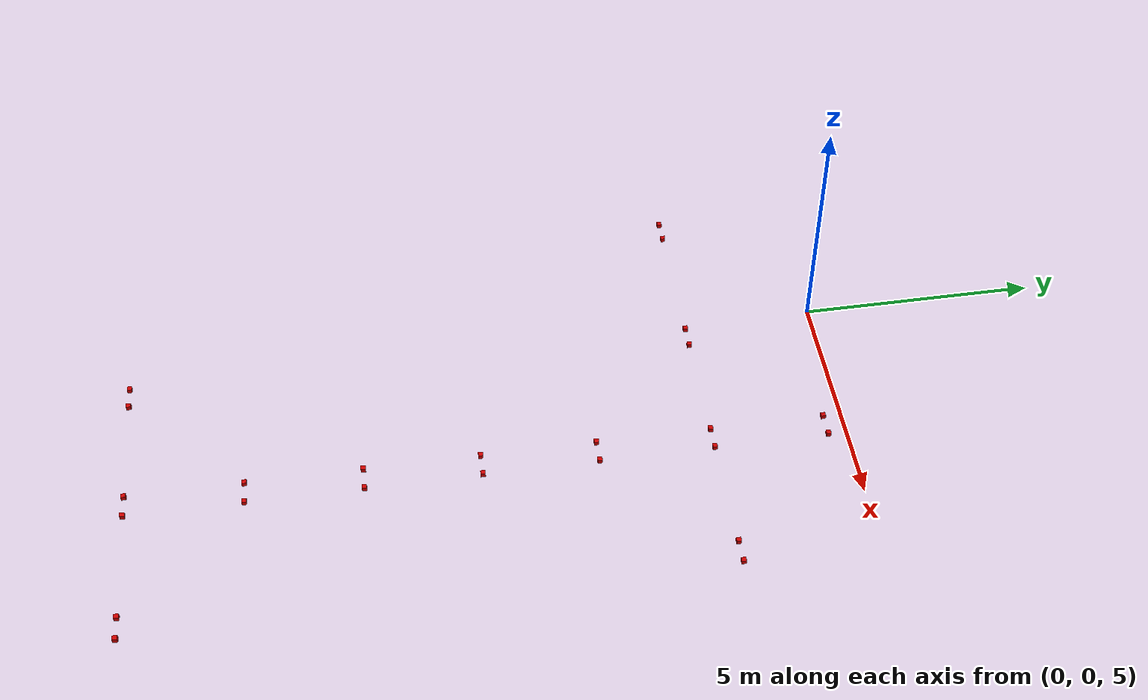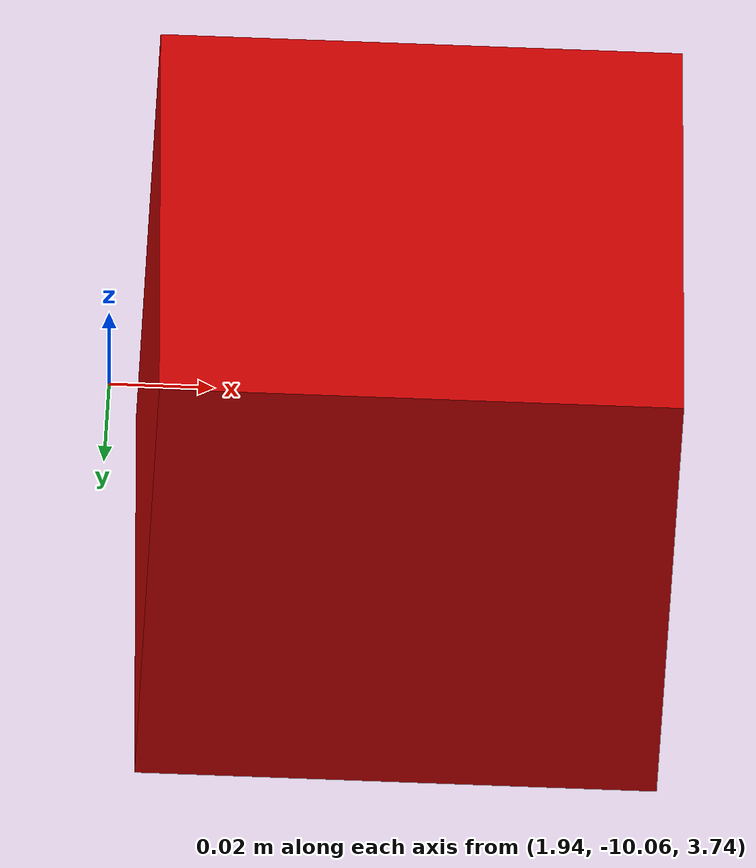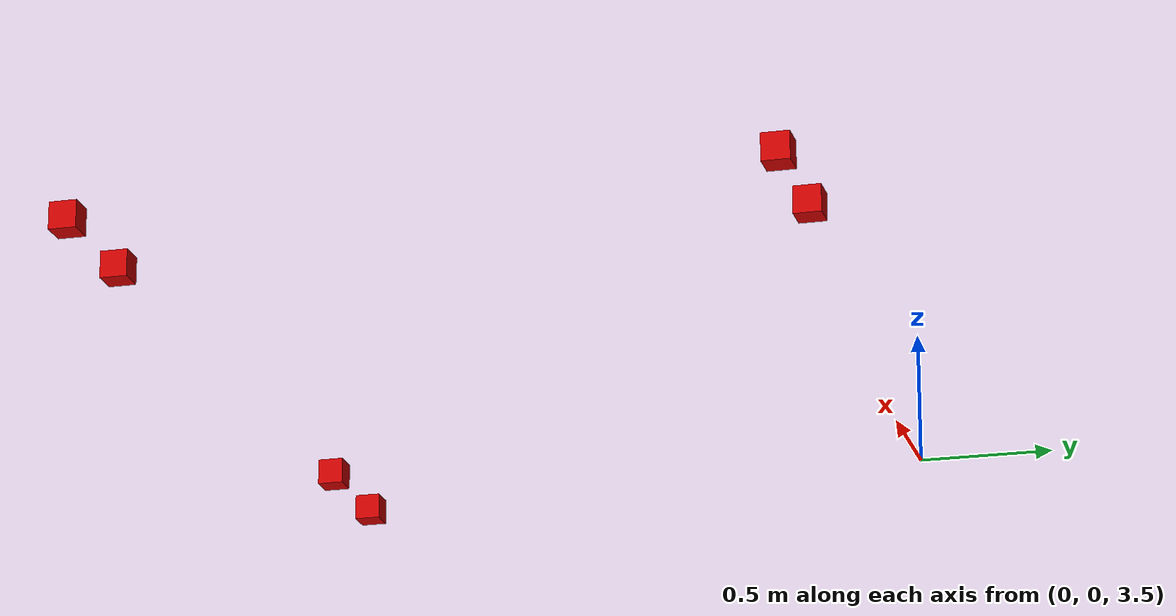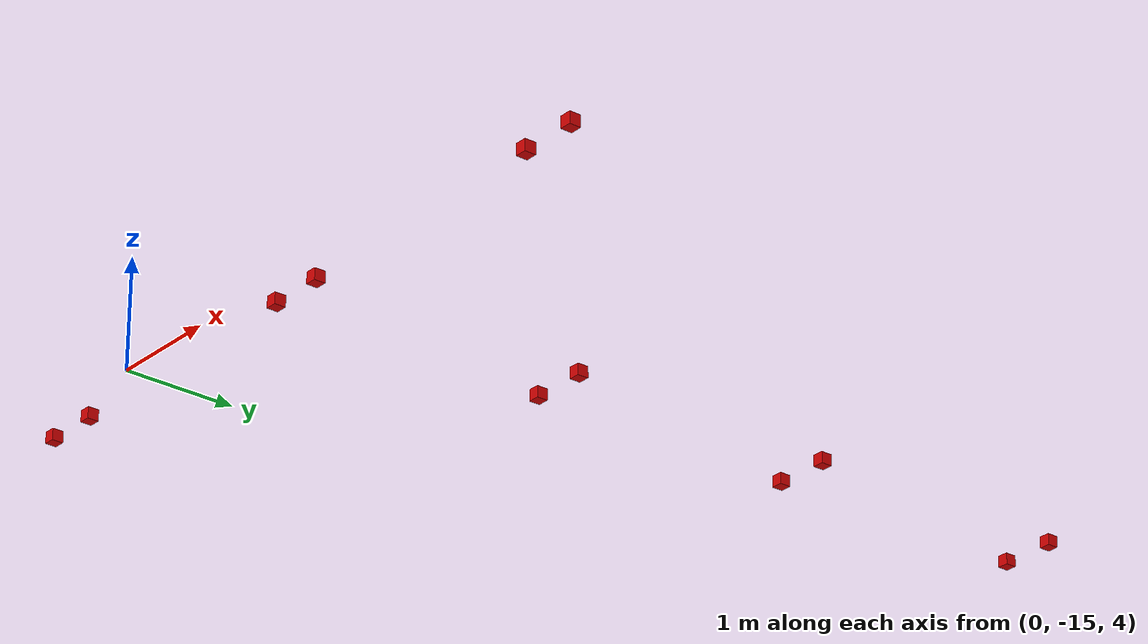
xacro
<?xml version="1.0" ?>
<robot name="warehouse" xmlns:xacro="http://www.ros.org/wiki/xacro" >
<xacro:include filename = "$(find cam_pack)/urdf/warehouse.plugins.xacro"/>

<xacro:property name="height_off_ground" value="4" />
<xacro:property name="height_off_ground_offset" value="0.2" />
<xacro:property name="cam_separation" value="10" />
<xacro:property name="cam_box_size" value="0.1" />
<xacro:property name="cam_mass" value="0.25" />
<xacro:property name="cam_z_joint_height" value="${height_off_ground - height_off_ground_offset}" />

<xacro:property name="cam_inertia_xx" value="0.00020416666666666668" />
<xacro:property name="cam_inertia_yy" value="0.00020416666666666668" />
<xacro:property name="cam_inertia_zz" value="0.00020416666666666668" />

<xacro:property name="ceiling_mass" value="50" />
<xacro:property name="ceiling_inertia_xx" value="150.16666666666669" />
<xacro:property name="ceiling_inertia_yy" value="337.66666666666674" />
<xacro:property name="ceiling_inertia_zz" value="487.50000000000006" />
<xacro:property name="ceiling_width" value="0.001" />
<xacro:property name="ceiling_length" value="0.001" />
<xacro:property name="ceiling_thickness" value="0.001" />

    <!-- Specify material colors here -->
    <material name="blue">
        <color rgba="0 0 0.8 0.8"/>
    </material>
    <material name="red">
        <color rgba="0.8 0 0 1"/>
    </material>
    <material name="grey">
        <color rgba="0.75 0.75 0.75 1"/>
    </material>

    <!-- Gazebo plugin initialization -->
    <gazebo>
        <plugin name="gazebo_ros_control" filename="libgazebo_ros_control.so">
            <robotNamespace>/warehouse</robotNamespace> This robot name is the same as robot name at the top
        </plugin>
    </gazebo>

     <!-- ////////////////////////// === BASE LINK ==== //////////////////////////////////// -->

   <!-- Main base link -->
    <link name="base_link">
        <visual>
        <origin xyz="0 0 ${height_off_ground}" rpy="0 0 0"/>  created at 31 meters above just to have space to work with
        <geometry>
            <box size="${ceiling_width} ${ceiling_length} ${ceiling_thickness}"/>
        </geometry>
        <material name = "blue"/>
        </visual>

        <collision>
            <origin xyz="0 0 ${height_off_ground}" rpy="0 0 0"/>
            <geometry>
                <box size="${ceiling_width} ${ceiling_length} ${ceiling_thickness}"/>
            </geometry>
        </collision>
        <inertial>
        <mass value="${ceiling_mass}" /> This camera was estimated from the mass(weight) of a logitech camera = 0.25kg
        <origin xyz="0 0 ${height_off_ground}" rpy="0 0 0"/> Inertia was calculated from the inertial calculator program
        <inertia ixx="${ceiling_inertia_xx}" ixy="0" ixz="0" iyy="${ceiling_inertia_yy}" iyz="0" izz="${ceiling_inertia_zz}" />
        </inertial>
    </link>

    This is for color and physical properties in Gazebo, color won't work with the material tag in gazebo
    only for URDF coloring
    <gazebo reference="base_link">
        <turnGravityOff>true</turnGravityOff>
        <mu1>10.0</mu1>
        <mu2>10.0</mu2>
        <material>Gazebo/DarkGrey</material>
        <static>true</static>
    </gazebo>

    <!-- ////////////////////////// === CAMERA LINKS ==== //////////////////////////////////// -->
 Change camera size to make more visible 0.5 0.5 0.5...original = 0.07 0.07 0.07
    <!-- Camera Link 1-->
    <link name="camera_link_1">
        <collision>
        <origin xyz="0 0 0" rpy="0 0 0"/>
        <geometry>
            <box size="${cam_box_size} ${cam_box_size} ${cam_box_size}"/>
        </geometry>
        </collision>

        <visual>
        <origin xyz="0 0 0" rpy="0 0 0"/>
        <geometry>
            <box size="${cam_box_size} ${cam_box_size} ${cam_box_size}"/>
        </geometry>
        <material name="red"/>
        </visual>

        <inertial>
        <mass value="${cam_mass}" /> This camera was estimated from the mass(weight) of a logitech camera = 0.25kg
        <origin xyz="0 0 0" rpy="0 0 0"/> Inertia was calculated from the inertial calculator program
        <inertia ixx="${cam_inertia_xx}" ixy="0" ixz="0" iyy="${cam_inertia_yy}" iyz="0" izz="${cam_inertia_zz}" />
        </inertial>
    </link>

    <gazebo reference="camera_link_1">
        <turnGravityOff>true</turnGravityOff>
        <mu1>10.0</mu1>
        <mu2>10.0</mu2>
        <material>Gazebo/Blue</material>
        <static>true</static>
    </gazebo>

    <!-- Camera Link 2-->
    <link name="camera_link_2">
        <collision>
        <origin xyz="0 0 0" rpy="0 0 0"/>
        <geometry>
            <box size="${cam_box_size} ${cam_box_size} ${cam_box_size}"/>
        </geometry>
        </collision>

        <visual>
        <origin xyz="0 0 0" rpy="0 0 0"/>
        <geometry>
            <box size="${cam_box_size} ${cam_box_size} ${cam_box_size}"/>
        </geometry>
        <material name="red"/>
        </visual>

        <inertial>
        <mass value="${cam_mass}" /> This camera was estimated from the mass(weight) of a logitech camera = 0.25kg
        <origin xyz="0 0 0" rpy="0 0 0"/> Inertia was calculated from the inertial calculator program
        <inertia ixx="${cam_inertia_xx}" ixy="0" ixz="0" iyy="${cam_inertia_yy}" iyz="0" izz="${cam_inertia_zz}" />
        </inertial>
    </link>

    <gazebo reference="camera_link_2">
        <turnGravityOff>true</turnGravityOff>
        <mu1>10.0</mu1>
        <mu2>10.0</mu2>
        <material>Gazebo/Red</material>
        <static>true</static>
    </gazebo>

    <!-- Camera Link 3-->
    <link name="camera_link_3">
        <collision>
        <origin xyz="0 0 0" rpy="0 0 0"/>
        <geometry>
            <box size="${cam_box_size} ${cam_box_size} ${cam_box_size}"/>
        </geometry>
        </collision>

        <visual>
        <origin xyz="0 0 0" rpy="0 0 0"/>
        <geometry>
            <box size="${cam_box_size} ${cam_box_size} ${cam_box_size}"/>
        </geometry>
        <material name="red"/>
        </visual>

        <inertial>
        <mass value="${cam_mass}" /> This camera was estimated from the mass(weight) of a logitech camera = 0.25kg
        <origin xyz="0 0 0" rpy="0 0 0"/> Inertia was calculated from the inertial calculator program
        <inertia ixx="${cam_inertia_xx}" ixy="0" ixz="0" iyy="${cam_inertia_yy}" iyz="0" izz="${cam_inertia_zz}" />
        </inertial>
    </link>

    <gazebo reference="camera_link_3">
        <turnGravityOff>true</turnGravityOff>
        <mu1>10.0</mu1>
        <mu2>10.0</mu2>
        <material>Gazebo/Red</material>
        <static>true</static>
    </gazebo>

    <!-- Camera Link 4-->
    <link name="camera_link_4">
        <collision>
        <origin xyz="0 0 0" rpy="0 0 0"/>
        <geometry>
            <box size="${cam_box_size} ${cam_box_size} ${cam_box_size}"/>
        </geometry>
        </collision>

        <visual>
        <origin xyz="0 0 0" rpy="0 0 0"/>
        <geometry>
            <box size="${cam_box_size} ${cam_box_size} ${cam_box_size}"/>
        </geometry>
        <material name="red"/>
        </visual>

        <inertial>
        <mass value="${cam_mass}" /> This camera was estimated from the mass(weight) of a logitech camera = 0.25kg
        <origin xyz="0 0 0" rpy="0 0 0"/> Inertia was calculated from the inertial calculator program
        <inertia ixx="${cam_inertia_xx}" ixy="0" ixz="0" iyy="${cam_inertia_yy}" iyz="0" izz="${cam_inertia_zz}" />
        </inertial>
    </link>

    <gazebo reference="camera_link_4">
        <turnGravityOff>true</turnGravityOff>
        <mu1>10.0</mu1>
        <mu2>10.0</mu2>
        <material>Gazebo/Red</material>
        <static>true</static>
    </gazebo>

    <!-- Camera Link 5-->
    <link name="camera_link_5">
        <collision>
        <origin xyz="0 0 0" rpy="0 0 0"/>
        <geometry>
            <box size="${cam_box_size} ${cam_box_size} ${cam_box_size}"/>
        </geometry>
        </collision>

        <visual>
        <origin xyz="0 0 0" rpy="0 0 0"/>
        <geometry>
            <box size="${cam_box_size} ${cam_box_size} ${cam_box_size}"/>
        </geometry>
        <material name="red"/>
        </visual>

        <inertial>
        <mass value="${cam_mass}" /> This camera was estimated from the mass(weight) of a logitech camera = 0.25kg
        <origin xyz="0 0 0" rpy="0 0 0"/> Inertia was calculated from the inertial calculator program
        <inertia ixx="${cam_inertia_xx}" ixy="0" ixz="0" iyy="${cam_inertia_yy}" iyz="0" izz="${cam_inertia_zz}" />
        </inertial>
    </link>

    <gazebo reference="camera_link_5">
        <turnGravityOff>true</turnGravityOff>
        <mu1>10.0</mu1>
        <mu2>10.0</mu2>
        <material>Gazebo/Red</material>
        <static>true</static>
    </gazebo>

 <!-- Camera Link 6-->
    <link name="camera_link_6">
        <collision>
        <origin xyz="0 0 0" rpy="0 0 0"/>
        <geometry>
            <box size="${cam_box_size} ${cam_box_size} ${cam_box_size}"/>
        </geometry>
        </collision>

        <visual>
        <origin xyz="0 0 0" rpy="0 0 0"/>
        <geometry>
            <box size="${cam_box_size} ${cam_box_size} ${cam_box_size}"/>
        </geometry>
        <material name="red"/>
        </visual>

        <inertial>
        <mass value="${cam_mass}" /> This camera was estimated from the mass(weight) of a logitech camera = 0.25kg
        <origin xyz="0 0 0" rpy="0 0 0"/> Inertia was calculated from the inertial calculator program
        <inertia ixx="${cam_inertia_xx}" ixy="0" ixz="0" iyy="${cam_inertia_yy}" iyz="0" izz="${cam_inertia_zz}" />
        </inertial>
    </link>

    <gazebo reference="camera_link_6">
        <turnGravityOff>true</turnGravityOff>
        <mu1>10.0</mu1>
        <mu2>10.0</mu2>
        <material>Gazebo/Red</material>
        <static>true</static>
    </gazebo>

<!-- Camera Link 7-->
    <link name="camera_link_7">
        <collision>
        <origin xyz="0 0 0" rpy="0 0 0"/>
        <geometry>
            <box size="${cam_box_size} ${cam_box_size} ${cam_box_size}"/>
        </geometry>
        </collision>

        <visual>
        <origin xyz="0 0 0" rpy="0 0 0"/>
        <geometry>
            <box size="${cam_box_size} ${cam_box_size} ${cam_box_size}"/>
        </geometry>
        <material name="red"/>
        </visual>

        <inertial>
        <mass value="${cam_mass}" /> This camera was estimated from the mass(weight) of a logitech camera = 0.25kg
        <origin xyz="0 0 0" rpy="0 0 0"/> Inertia was calculated from the inertial calculator program
        <inertia ixx="${cam_inertia_xx}" ixy="0" ixz="0" iyy="${cam_inertia_yy}" iyz="0" izz="${cam_inertia_zz}" />
        </inertial>
    </link>

    <gazebo reference="camera_link_7">
        <turnGravityOff>true</turnGravityOff>
        <mu1>10.0</mu1>
        <mu2>10.0</mu2>
        <material>Gazebo/Red</material>
        <static>true</static>
    </gazebo>

    <!-- Camera Link 8-->
    <link name="camera_link_8">
        <collision>
        <origin xyz="0 0 0" rpy="0 0 0"/>
        <geometry>
            <box size="${cam_box_size} ${cam_box_size} ${cam_box_size}"/>
        </geometry>
        </collision>

        <visual>
        <origin xyz="0 0 0" rpy="0 0 0"/>
        <geometry>
            <box size="${cam_box_size} ${cam_box_size} ${cam_box_size}"/>
        </geometry>
        <material name="red"/>
        </visual>

        <inertial>
        <mass value="${cam_mass}" /> This camera was estimated from the mass(weight) of a logitech camera = 0.25kg
        <origin xyz="0 0 0" rpy="0 0 0"/> Inertia was calculated from the inertial calculator program
        <inertia ixx="${cam_inertia_xx}" ixy="0" ixz="0" iyy="${cam_inertia_yy}" iyz="0" izz="${cam_inertia_zz}" />
        </inertial>
    </link>

    <gazebo reference="camera_link_8">
        <turnGravityOff>true</turnGravityOff>
        <mu1>10.0</mu1>
        <mu2>10.0</mu2>
        <material>Gazebo/Red</material>
        <static>true</static>
    </gazebo>

<!-- Camera Link 9-->
    <link name="camera_link_9">
        <collision>
        <origin xyz="0 0 0" rpy="0 0 0"/>
        <geometry>
            <box size="${cam_box_size} ${cam_box_size} ${cam_box_size}"/>
        </geometry>
        </collision>

        <visual>
        <origin xyz="0 0 0" rpy="0 0 0"/>
        <geometry>
            <box size="${cam_box_size} ${cam_box_size} ${cam_box_size}"/>
        </geometry>
        <material name="red"/>
        </visual>

        <inertial>
        <mass value="${cam_mass}" /> This camera was estimated from the mass(weight) of a logitech camera = 0.25kg
        <origin xyz="0 0 0" rpy="0 0 0"/> Inertia was calculated from the inertial calculator program
        <inertia ixx="${cam_inertia_xx}" ixy="0" ixz="0" iyy="${cam_inertia_yy}" iyz="0" izz="${cam_inertia_zz}" />
        </inertial>
    </link>

    <gazebo reference="camera_link_9">
        <turnGravityOff>true</turnGravityOff>
        <mu1>10.0</mu1>
        <mu2>10.0</mu2>
        <material>Gazebo/Red</material>
        <static>true</static>
    </gazebo>

    <!-- Camera Link 10-->
    <link name="camera_link_10">
        <collision>
        <origin xyz="0 0 0" rpy="0 0 0"/>
        <geometry>
            <box size="${cam_box_size} ${cam_box_size} ${cam_box_size}"/>
        </geometry>
        </collision>

        <visual>
        <origin xyz="0 0 0" rpy="0 0 0"/>
        <geometry>
            <box size="${cam_box_size} ${cam_box_size} ${cam_box_size}"/>
        </geometry>
        <material name="red"/>
        </visual>

        <inertial>
        <mass value="${cam_mass}" /> This camera was estimated from the mass(weight) of a logitech camera = 0.25kg
        <origin xyz="0 0 0" rpy="0 0 0"/> Inertia was calculated from the inertial calculator program
        <inertia ixx="${cam_inertia_xx}" ixy="0" ixz="0" iyy="${cam_inertia_yy}" iyz="0" izz="${cam_inertia_zz}" />
        </inertial>
    </link>

    <gazebo reference="camera_link_10">
        <turnGravityOff>true</turnGravityOff>
        <mu1>10.0</mu1>
        <mu2>10.0</mu2>
        <material>Gazebo/Red</material>
        <static>true</static>
    </gazebo>

    <!-- Camera Link 11-->
    <link name="camera_link_11">
        <collision>
        <origin xyz="0 0 0" rpy="0 0 0"/>
        <geometry>
            <box size="${cam_box_size} ${cam_box_size} ${cam_box_size}"/>
        </geometry>
        </collision>

        <visual>
        <origin xyz="0 0 0" rpy="0 0 0"/>
        <geometry>
            <box size="${cam_box_size} ${cam_box_size} ${cam_box_size}"/>
        </geometry>
        <material name="red"/>
        </visual>

        <inertial>
        <mass value="${cam_mass}" /> This camera was estimated from the mass(weight) of a logitech camera = 0.25kg
        <origin xyz="0 0 0" rpy="0 0 0"/> Inertia was calculated from the inertial calculator program
        <inertia ixx="${cam_inertia_xx}" ixy="0" ixz="0" iyy="${cam_inertia_yy}" iyz="0" izz="${cam_inertia_zz}" />
        </inertial>
    </link>

    <gazebo reference="camera_link_11">
        <turnGravityOff>true</turnGravityOff>
        <mu1>10.0</mu1>
        <mu2>10.0</mu2>
        <material>Gazebo/Red</material>
        <static>true</static>
    </gazebo>

    <!-- Camera Link 12-->
    <link name="camera_link_12">
        <collision>
        <origin xyz="0 0 0" rpy="0 0 0"/>
        <geometry>
            <box size="${cam_box_size} ${cam_box_size} ${cam_box_size}"/>
        </geometry>
        </collision>

        <visual>
        <origin xyz="0 0 0" rpy="0 0 0"/>
        <geometry>
            <box size="${cam_box_size} ${cam_box_size} ${cam_box_size}"/>
        </geometry>
        <material name="red"/>
        </visual>

        <inertial>
        <mass value="${cam_mass}" /> This camera was estimated from the mass(weight) of a logitech camera = 0.25kg
        <origin xyz="0 0 0" rpy="0 0 0"/> Inertia was calculated from the inertial calculator program
        <inertia ixx="${cam_inertia_xx}" ixy="0" ixz="0" iyy="${cam_inertia_yy}" iyz="0" izz="${cam_inertia_zz}" />
        </inertial>
    </link>

    <gazebo reference="camera_link_12">
        <turnGravityOff>true</turnGravityOff>
        <mu1>10.0</mu1>
        <mu2>10.0</mu2>
        <material>Gazebo/Red</material>
        <static>true</static>
    </gazebo>

    <!-- Camera Link 13-->
    <link name="camera_link_13">
        <collision>
        <origin xyz="0 0 0" rpy="0 0 0"/>
        <geometry>
            <box size="${cam_box_size} ${cam_box_size} ${cam_box_size}"/>
        </geometry>
        </collision>

        <visual>
        <origin xyz="0 0 0" rpy="0 0 0"/>
        <geometry>
            <box size="${cam_box_size} ${cam_box_size} ${cam_box_size}"/>
        </geometry>
        <material name="red"/>
        </visual>

        <inertial>
        <mass value="${cam_mass}" /> This camera was estimated from the mass(weight) of a logitech camera = 0.25kg
        <origin xyz="0 0 0" rpy="0 0 0"/> Inertia was calculated from the inertial calculator program
        <inertia ixx="${cam_inertia_xx}" ixy="0" ixz="0" iyy="${cam_inertia_yy}" iyz="0" izz="${cam_inertia_zz}" />
        </inertial>
    </link>

    <gazebo reference="camera_link_13">
        <turnGravityOff>true</turnGravityOff>
        <mu1>10.0</mu1>
        <mu2>10.0</mu2>
        <material>Gazebo/Red</material>
        <static>true</static>
    </gazebo>
    <!-- Camera Link 14-->
    <link name="camera_link_14">
        <collision>
        <origin xyz="0 0 0" rpy="0 0 0"/>
        <geometry>
            <box size="${cam_box_size} ${cam_box_size} ${cam_box_size}"/>
        </geometry>
        </collision>

        <visual>
        <origin xyz="0 0 0" rpy="0 0 0"/>
        <geometry>
            <box size="${cam_box_size} ${cam_box_size} ${cam_box_size}"/>
        </geometry>
        <material name="red"/>
        </visual>

        <inertial>
        <mass value="${cam_mass}" /> This camera was estimated from the mass(weight) of a logitech camera = 0.25kg
        <origin xyz="0 0 0" rpy="0 0 0"/> Inertia was calculated from the inertial calculator program
        <inertia ixx="${cam_inertia_xx}" ixy="0" ixz="0" iyy="${cam_inertia_yy}" iyz="0" izz="${cam_inertia_zz}" />
        </inertial>
    </link>

    <gazebo reference="camera_link_14">
        <turnGravityOff>true</turnGravityOff>
        <mu1>10.0</mu1>
        <mu2>10.0</mu2>
        <material>Gazebo/Red</material>
        <static>true</static>
    </gazebo>

    <!-- Camera Link 15-->
    <link name="camera_link_15">
        <collision>
        <origin xyz="0 0 0" rpy="0 0 0"/>
        <geometry>
            <box size="${cam_box_size} ${cam_box_size} ${cam_box_size}"/>
        </geometry>
        </collision>

        <visual>
        <origin xyz="0 0 0" rpy="0 0 0"/>
        <geometry>
            <box size="${cam_box_size} ${cam_box_size} ${cam_box_size}"/>
        </geometry>
        <material name="red"/>
        </visual>

        <inertial>
        <mass value="${cam_mass}" /> This camera was estimated from the mass(weight) of a logitech camera = 0.25kg
        <origin xyz="0 0 0" rpy="0 0 0"/> Inertia was calculated from the inertial calculator program
        <inertia ixx="${cam_inertia_xx}" ixy="0" ixz="0" iyy="${cam_inertia_yy}" iyz="0" izz="${cam_inertia_zz}" />
        </inertial>
    </link>

    <gazebo reference="camera_link_15">
        <turnGravityOff>true</turnGravityOff>
        <mu1>10.0</mu1>
        <mu2>10.0</mu2>
        <material>Gazebo/Red</material>
        <static>true</static>
    </gazebo>

        <!-- Camera Link 16-->
    <link name="camera_link_16">
        <collision>
        <origin xyz="0 0 0" rpy="0 0 0"/>
        <geometry>
            <box size="${cam_box_size} ${cam_box_size} ${cam_box_size}"/>
        </geometry>
        </collision>

        <visual>
        <origin xyz="0 0 0" rpy="0 0 0"/>
        <geometry>
            <box size="${cam_box_size} ${cam_box_size} ${cam_box_size}"/>
        </geometry>
        <material name="red"/>
        </visual>

        <inertial>
        <mass value="${cam_mass}" /> This camera was estimated from the mass(weight) of a logitech camera = 0.25kg
        <origin xyz="0 0 0" rpy="0 0 0"/> Inertia was calculated from the inertial calculator program
        <inertia ixx="${cam_inertia_xx}" ixy="0" ixz="0" iyy="${cam_inertia_yy}" iyz="0" izz="${cam_inertia_zz}" />
        </inertial>
    </link>

    <gazebo reference="camera_link_16">
        <turnGravityOff>true</turnGravityOff>
        <mu1>10.0</mu1>
        <mu2>10.0</mu2>
        <material>Gazebo/Red</material>
        <static>true</static>
    </gazebo>

        <!-- Camera Link 17-->
    <link name="camera_link_17">
        <collision>
        <origin xyz="0 0 0" rpy="0 0 0"/>
        <geometry>
            <box size="${cam_box_size} ${cam_box_size} ${cam_box_size}"/>
        </geometry>
        </collision>

        <visual>
        <origin xyz="0 0 0" rpy="0 0 0"/>
        <geometry>
            <box size="${cam_box_size} ${cam_box_size} ${cam_box_size}"/>
        </geometry>
        <material name="red"/>
        </visual>

        <inertial>
        <mass value="${cam_mass}" /> This camera was estimated from the mass(weight) of a logitech camera = 0.25kg
        <origin xyz="0 0 0" rpy="0 0 0"/> Inertia was calculated from the inertial calculator program
        <inertia ixx="${cam_inertia_xx}" ixy="0" ixz="0" iyy="${cam_inertia_yy}" iyz="0" izz="${cam_inertia_zz}" />
        </inertial>
    </link>

    <gazebo reference="camera_link_17">
        <turnGravityOff>true</turnGravityOff>
        <mu1>10.0</mu1>
        <mu2>10.0</mu2>
        <material>Gazebo/Red</material>
        <static>true</static>
    </gazebo>

    <!-- Camera Link 18-->
    <link name="camera_link_18">
        <collision>
        <origin xyz="0 0 0" rpy="0 0 0"/>
        <geometry>
            <box size="${cam_box_size} ${cam_box_size} ${cam_box_size}"/>
        </geometry>
        </collision>

        <visual>
        <origin xyz="0 0 0" rpy="0 0 0"/>
        <geometry>
            <box size="${cam_box_size} ${cam_box_size} ${cam_box_size}"/>
        </geometry>
        <material name="red"/>
        </visual>

        <inertial>
        <mass value="${cam_mass}" /> This camera was estimated from the mass(weight) of a logitech camera = 0.25kg
        <origin xyz="0 0 0" rpy="0 0 0"/> Inertia was calculated from the inertial calculator program
        <inertia ixx="${cam_inertia_xx}" ixy="0" ixz="0" iyy="${cam_inertia_yy}" iyz="0" izz="${cam_inertia_zz}" />
        </inertial>
    </link>

    <gazebo reference="camera_link_18">
        <turnGravityOff>true</turnGravityOff>
        <mu1>10.0</mu1>
        <mu2>10.0</mu2>
        <material>Gazebo/Red</material>
        <static>true</static>
    </gazebo>

        <!-- Camera Link 19-->
    <link name="camera_link_19">
        <collision>
        <origin xyz="0 0 0" rpy="0 0 0"/>
        <geometry>
            <box size="${cam_box_size} ${cam_box_size} ${cam_box_size}"/>
        </geometry>
        </collision>

        <visual>
        <origin xyz="0 0 0" rpy="0 0 0"/>
        <geometry>
            <box size="${cam_box_size} ${cam_box_size} ${cam_box_size}"/>
        </geometry>
        <material name="red"/>
        </visual>

        <inertial>
        <mass value="${cam_mass}" /> This camera was estimated from the mass(weight) of a logitech camera = 0.25kg
        <origin xyz="0 0 0" rpy="0 0 0"/> Inertia was calculated from the inertial calculator program
        <inertia ixx="${cam_inertia_xx}" ixy="0" ixz="0" iyy="${cam_inertia_yy}" iyz="0" izz="${cam_inertia_zz}" />
        </inertial>
    </link>

    <gazebo reference="camera_link_19">
        <turnGravityOff>true</turnGravityOff>
        <mu1>10.0</mu1>
        <mu2>10.0</mu2>
        <material>Gazebo/Red</material>
        <static>true</static>
    </gazebo>

    <!-- Camera Link 20-->
    <link name="camera_link_20">
        <collision>
        <origin xyz="0 0 0" rpy="0 0 0"/>
        <geometry>
            <box size="${cam_box_size} ${cam_box_size} ${cam_box_size}"/>
        </geometry>
        </collision>

        <visual>
        <origin xyz="0 0 0" rpy="0 0 0"/>
        <geometry>
            <box size="${cam_box_size} ${cam_box_size} ${cam_box_size}"/>
        </geometry>
        <material name="red"/>
        </visual>

        <inertial>
        <mass value="${cam_mass}" /> This camera was estimated from the mass(weight) of a logitech camera = 0.25kg
        <origin xyz="0 0 0" rpy="0 0 0"/> Inertia was calculated from the inertial calculator program
        <inertia ixx="${cam_inertia_xx}" ixy="0" ixz="0" iyy="${cam_inertia_yy}" iyz="0" izz="${cam_inertia_zz}" />
        </inertial>
    </link>

    <gazebo reference="camera_link_20">
        <turnGravityOff>true</turnGravityOff>
        <mu1>10.0</mu1>
        <mu2>10.0</mu2>
        <material>Gazebo/Red</material>
        <static>true</static>
    </gazebo>

        <!-- Camera Link 21-->
    <link name="camera_link_21">
        <collision>
        <origin xyz="0 0 0" rpy="0 0 0"/>
        <geometry>
            <box size="${cam_box_size} ${cam_box_size} ${cam_box_size}"/>
        </geometry>
        </collision>

        <visual>
        <origin xyz="0 0 0" rpy="0 0 0"/>
        <geometry>
            <box size="${cam_box_size} ${cam_box_size} ${cam_box_size}"/>
        </geometry>
        <material name="red"/>
        </visual>

        <inertial>
        <mass value="${cam_mass}" /> This camera was estimated from the mass(weight) of a logitech camera = 0.25kg
        <origin xyz="0 0 0" rpy="0 0 0"/> Inertia was calculated from the inertial calculator program
        <inertia ixx="${cam_inertia_xx}" ixy="0" ixz="0" iyy="${cam_inertia_yy}" iyz="0" izz="${cam_inertia_zz}" />
        </inertial>
    </link>

    <gazebo reference="camera_link_21">
        <turnGravityOff>true</turnGravityOff>
        <mu1>10.0</mu1>
        <mu2>10.0</mu2>
        <material>Gazebo/Red</material>
        <static>true</static>
    </gazebo>

        <!-- Camera Link 22-->
    <link name="camera_link_22">
        <collision>
        <origin xyz="0 0 0" rpy="0 0 0"/>
        <geometry>
            <box size="${cam_box_size} ${cam_box_size} ${cam_box_size}"/>
        </geometry>
        </collision>

        <visual>
        <origin xyz="0 0 0" rpy="0 0 0"/>
        <geometry>
            <box size="${cam_box_size} ${cam_box_size} ${cam_box_size}"/>
        </geometry>
        <material name="red"/>
        </visual>

        <inertial>
        <mass value="${cam_mass}" /> This camera was estimated from the mass(weight) of a logitech camera = 0.25kg
        <origin xyz="0 0 0" rpy="0 0 0"/> Inertia was calculated from the inertial calculator program
        <inertia ixx="${cam_inertia_xx}" ixy="0" ixz="0" iyy="${cam_inertia_yy}" iyz="0" izz="${cam_inertia_zz}" />
        </inertial>
    </link>

    <gazebo reference="camera_link_22">
        <turnGravityOff>true</turnGravityOff>
        <mu1>10.0</mu1>
        <mu2>10.0</mu2>
        <material>Gazebo/Red</material>
        <static>true</static>
    </gazebo>

       <!-- Camera Link 23-->
    <link name="camera_link_23">
        <collision>
        <origin xyz="0 0 0" rpy="0 0 0"/>
        <geometry>
            <box size="${cam_box_size} ${cam_box_size} ${cam_box_size}"/>
        </geometry>
        </collision>

        <visual>
        <origin xyz="0 0 0" rpy="0 0 0"/>
        <geometry>
            <box size="${cam_box_size} ${cam_box_size} ${cam_box_size}"/>
        </geometry>
        <material name="red"/>
        </visual>

        <inertial>
        <mass value="${cam_mass}" /> This camera was estimated from the mass(weight) of a logitech camera = 0.25kg
        <origin xyz="0 0 0" rpy="0 0 0"/> Inertia was calculated from the inertial calculator program
        <inertia ixx="${cam_inertia_xx}" ixy="0" ixz="0" iyy="${cam_inertia_yy}" iyz="0" izz="${cam_inertia_zz}" />
        </inertial>
    </link>

    <gazebo reference="camera_link_23">
        <turnGravityOff>true</turnGravityOff>
        <mu1>10.0</mu1>
        <mu2>10.0</mu2>
        <material>Gazebo/Red</material>
        <static>true</static>
    </gazebo>

      <!-- Camera Link 24-->
    <link name="camera_link_24">
        <collision>
        <origin xyz="0 0 0" rpy="0 0 0"/>
        <geometry>
            <box size="${cam_box_size} ${cam_box_size} ${cam_box_size}"/>
        </geometry>
        </collision>

        <visual>
        <origin xyz="0 0 0" rpy="0 0 0"/>
        <geometry>
            <box size="${cam_box_size} ${cam_box_size} ${cam_box_size}"/>
        </geometry>
        <material name="red"/>
        </visual>

        <inertial>
        <mass value="${cam_mass}" /> This camera was estimated from the mass(weight) of a logitech camera = 0.25kg
        <origin xyz="0 0 0" rpy="0 0 0"/> Inertia was calculated from the inertial calculator program
        <inertia ixx="${cam_inertia_xx}" ixy="0" ixz="0" iyy="${cam_inertia_yy}" iyz="0" izz="${cam_inertia_zz}" />
        </inertial>
    </link>

    <gazebo reference="camera_link_24">
        <turnGravityOff>true</turnGravityOff>
        <mu1>10.0</mu1>
        <mu2>10.0</mu2>
        <material>Gazebo/Red</material>
        <static>true</static>
    </gazebo>

    <!-- ////////////////////////// === Joints ==== //////////////////////////////////// -->
  I can spawn all the camera links at origin 0 0 0  but I use the joints to move them to the positions I want them in.
//////////////first column

    <!-- joint = base_link to camera_link -->
    <joint name="camera_joint_1" type="fixed">
        <origin xyz="${-1} ${-15} ${cam_z_joint_height}" rpy="0 3.142 0"/>
        <parent link="base_link"/>
        <child link="camera_link_1"/>
    </joint>

    <!-- joint = base_link to camera_link -->
    <joint name="camera_joint_2" type="fixed">
        <origin xyz="${-0.5} ${-15} ${cam_z_joint_height}" rpy="0 3.142 0"/>
        <parent link="base_link"/>
        <child link="camera_link_2"/>
    </joint>

    <!-- joint = base_link to camera_link -->
    <joint name="camera_joint_3" type="fixed">
        <origin xyz="${2} ${-15}  ${cam_z_joint_height}" rpy="0 3.142 0"/>
        <parent link="base_link"/>
        <child link="camera_link_3"/>
    </joint>

     <!-- joint = base_link to camera_link -->
    <joint name="camera_joint_4" type="fixed">
        <origin xyz="${2.5} ${-15}  ${cam_z_joint_height}" rpy="0 3.142 0"/>
        <parent link="base_link"/>
        <child link="camera_link_4"/>
    </joint>

    <!-- joint = base_link to camera_link -->
    <joint name="camera_joint_5" type="fixed">
        <origin xyz="${5} ${-15}  ${cam_z_joint_height}" rpy="0 3.142 0"/>
        <parent link="base_link"/>
        <child link="camera_link_5"/>
    </joint>

    <!-- joint = base_link to camera_link -->
    <joint name="camera_joint_6" type="fixed">
        <origin xyz="${5.5} ${-15}  ${cam_z_joint_height}" rpy="0 3.142 0"/>
        <parent link="base_link"/>
        <child link="camera_link_6"/>
    </joint>
///////////////////////////////////////////////

    <!-- joint = base_link to camera_link -->
    <joint name="camera_joint_7" type="fixed">
        <origin xyz="${2} ${-12.5}  ${cam_z_joint_height}" rpy="0 3.142 0"/>
        <parent link="base_link"/>
        <child link="camera_link_7"/>
    </joint>

    <!-- joint = base_link to camera_link -->
    <joint name="camera_joint_8" type="fixed">
        <origin xyz="${2.5} ${-12.5} ${cam_z_joint_height}" rpy="0 3.142 0"/>
        <parent link="base_link"/>
        <child link="camera_link_8"/>
    </joint>

///////////////////////////////////////
    <!-- joint = base_link to camera_link -->
    <joint name="camera_joint_9" type="fixed">
        <origin xyz="${2} ${-10} ${cam_z_joint_height}" rpy="0 3.142 0"/>
        <parent link="base_link"/>
        <child link="camera_link_9"/>
    </joint>

    <!-- joint = base_link to camera_link -->
    <joint name="camera_joint_10" type="fixed">
        <origin xyz="${2.5} ${-10} ${cam_z_joint_height}" rpy="0 3.142 0"/>
        <parent link="base_link"/>
        <child link="camera_link_10"/>
    </joint>

////////////////////////////////////////////////
    <!-- joint = base_link to camera_link -->
    <joint name="camera_joint_11" type="fixed">
        <origin xyz="${2} ${-7.5} ${cam_z_joint_height}" rpy="0 3.142 0"/>
        <parent link="base_link"/>
        <child link="camera_link_11"/>
    </joint>

     <!-- joint = base_link to camera_link -->
    <joint name="camera_joint_12" type="fixed">
        <origin xyz="${2.5} ${-7.5} ${cam_z_joint_height}" rpy="0 3.142 0"/>
        <parent link="base_link"/>
        <child link="camera_link_12"/>
    </joint>

//////////////////////////////////////////
     <!-- joint = base_link to camera_link -->
    <joint name="camera_joint_13" type="fixed">
        <origin xyz="${2} ${-5} ${cam_z_joint_height}" rpy="0 3.142 0"/>
        <parent link="base_link"/>
        <child link="camera_link_13"/>
    </joint>

     <!-- joint = base_link to camera_link -->
    <joint name="camera_joint_14" type="fixed">
        <origin xyz="${2.5} ${-5} ${cam_z_joint_height}" rpy="0 3.142 0"/>
        <parent link="base_link"/>
        <child link="camera_link_14"/>
    </joint>

///////////////////////////////////

     <!-- joint = base_link to camera_link -->
    <joint name="camera_joint_15" type="fixed">
        <origin xyz="${2} ${-2.5} ${cam_z_joint_height}" rpy="0 3.142 0"/>
        <parent link="base_link"/>
        <child link="camera_link_15"/>
    </joint>

     <!-- joint = base_link to camera_link -->
    <joint name="camera_joint_16" type="fixed">
        <origin xyz="${2.5} ${-2.5} ${cam_z_joint_height}" rpy="0 3.142 0"/>
        <parent link="base_link"/>
        <child link="camera_link_16"/>
    </joint>

<!--//////////third column-->
     <!-- joint = base_link to camera_link -->
    <joint name="camera_joint_17" type="fixed">
        <origin xyz="${5} ${-2.5} ${cam_z_joint_height}" rpy="0 3.142 0"/>
        <parent link="base_link"/>
        <child link="camera_link_17"/>
    </joint>

    <!-- joint = base_link to camera_link -->
    <joint name="camera_joint_18" type="fixed">
        <origin xyz="${5.5} ${-2.5} ${cam_z_joint_height}" rpy="0 3.142 0"/>
        <parent link="base_link"/>
        <child link="camera_link_18"/>
    </joint>

    <!-- joint = base_link to camera_link -->
    <joint name="camera_joint_19" type="fixed">
        <origin xyz="${-1} ${-2.5} ${cam_z_joint_height}" rpy="0 3.142 0"/>
        <parent link="base_link"/>
        <child link="camera_link_19"/>
    </joint>

    <!-- joint = base_link to camera_link -->
    <joint name="camera_joint_20" type="fixed">
        <origin xyz="${-0.5} ${-2.5} ${cam_z_joint_height}" rpy="0 3.142 0"/>
        <parent link="base_link"/>
        <child link="camera_link_20"/>
    </joint>

    <!-- joint = base_link to camera_link -->
    <joint name="camera_joint_21" type="fixed">
        <origin xyz="${-4} ${-2.5} ${cam_z_joint_height}" rpy="0 3.142 0"/>
        <parent link="base_link"/>
        <child link="camera_link_21"/>
    </joint>

    <!-- joint = base_link to camera_link -->
    <joint name="camera_joint_22" type="fixed">
        <origin xyz="${-4.5} ${-2.5} ${cam_z_joint_height}" rpy="0 3.142 0"/>
        <parent link="base_link"/>
        <child link="camera_link_22"/>
    </joint>

////////////////////////////////////////////////////////////
    <!-- joint = base_link to camera_link -->
    <joint name="camera_joint_23" type="fixed">
        <origin xyz="${2} ${0} ${cam_z_joint_height}" rpy="0 3.142 0"/>
        <parent link="base_link"/>
        <child link="camera_link_23"/>
    </joint>

    <!-- joint = base_link to camera_link -->
    <joint name="camera_joint_24" type="fixed">
        <origin xyz="${2.5} ${0} ${cam_z_joint_height}" rpy="0 3.142 0"/>
        <parent link="base_link"/>
        <child link="camera_link_24"/>
    </joint>

</robot>
